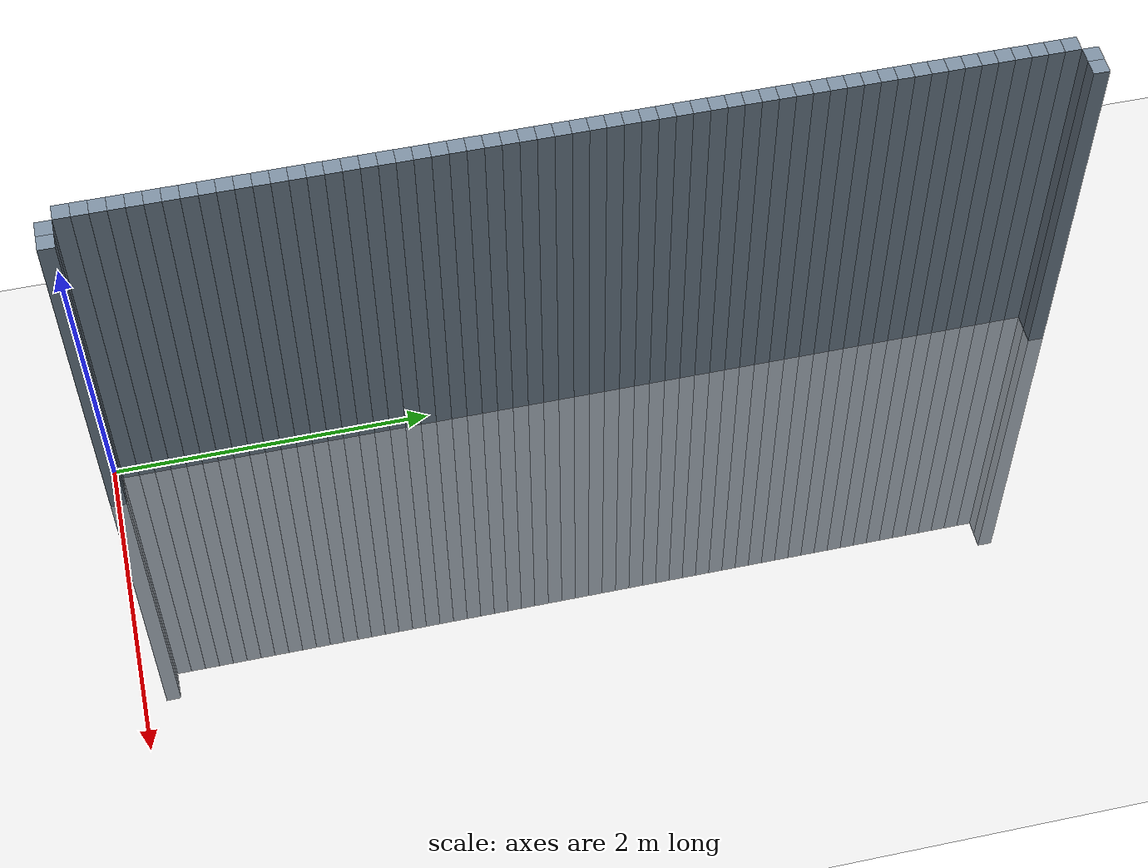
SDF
<sdf version="1.6">
 <world name="default">
  <model name="ground_plane">
   <static>1</static>
   <link name="link">
    <collision name="collision">
     <geometry><plane><normal>0 0 1</normal><size>100 100</size></plane></geometry>
     <surface><friction><ode><mu>100</mu><mu2>50</mu2></ode></friction></surface>
    </collision>
    <visual name="visual">
     <cast_shadows>0</cast_shadows>
     <geometry><plane><normal>0 0 1</normal><size>100 100</size></plane></geometry>
     <material>
      <script><uri>file://media/materials/scripts/gazebo.material</uri><name>Gazebo/Grey</name></script>
     </material>
    </visual>
   </link>
  </model>
  <model name="unit_cylinder_1">
   <static>1</static>
   <pose>0 0.1 0 0 -0 0</pose>
   <link name="link">
    <inertial>
     <mass>1</mass>
     <inertia><ixx>0.145833</ixx><ixy>0</ixy><ixz>0</ixz><iyy>0.145833</iyy><iyz>0</iyz><izz>0.125</izz></inertia>
    </inertial>
    <collision name="collision"><geometry><box><size>0.1 0.1 5</size></box></geometry></collision>
    <visual name="visual">
     <geometry><box><size>0.1 0.1 5</size></box></geometry>
     <material><ambient>0.466667 0.533333 0.6 1</ambient><diffuse>0.466667 0.533333 0.6 1</diffuse></material>
     <material>
      <script><name>Gazebo/Grey</name><uri>file://media/materials/scripts/gazebo.material</uri></script>
     </material>
    </visual>
   </link>
  </model>
  <model name="unit_cylinder_2">
   <static>1</static>
   <pose>0 0.2 0 0 -0 0</pose>
   <link name="link">
    <inertial>
     <mass>1</mass>
     <inertia><ixx>0.145833</ixx><ixy>0</ixy><ixz>0</ixz><iyy>0.145833</iyy><iyz>0</iyz><izz>0.125</izz></inertia>
    </inertial>
    <collision name="collision"><geometry><box><size>0.1 0.1 5</size></box></geometry></collision>
    <visual name="visual">
     <geometry><box><size>0.1 0.1 5</size></box></geometry>
     <material><ambient>0.466667 0.533333 0.6 1</ambient><diffuse>0.466667 0.533333 0.6 1</diffuse></material>
     <material>
      <script><name>Gazebo/Grey</name><uri>file://media/materials/scripts/gazebo.material</uri></script>
     </material>
    </visual>
   </link>
  </model>
  <model name="unit_cylinder_3">
   <static>1</static>
   <pose>0 0.3 0 0 -0 0</pose>
   <link name="link">
    <inertial>
     <mass>1</mass>
     <inertia><ixx>0.145833</ixx><ixy>0</ixy><ixz>0</ixz><iyy>0.145833</iyy><iyz>0</iyz><izz>0.125</izz></inertia>
    </inertial>
    <collision name="collision"><geometry><box><size>0.1 0.1 5</size></box></geometry></collision>
    <visual name="visual">
     <geometry><box><size>0.1 0.1 5</size></box></geometry>
     <material><ambient>0.466667 0.533333 0.6 1</ambient><diffuse>0.466667 0.533333 0.6 1</diffuse></material>
     <material>
      <script><name>Gazebo/Grey</name><uri>file://media/materials/scripts/gazebo.material</uri></script>
     </material>
    </visual>
   </link>
  </model>
  <model name="unit_cylinder_4">
   <static>1</static>
   <pose>0 0.4 0 0 -0 0</pose>
   <link name="link">
    <inertial>
     <mass>1</mass>
     <inertia><ixx>0.145833</ixx><ixy>0</ixy><ixz>0</ixz><iyy>0.145833</iyy><iyz>0</iyz><izz>0.125</izz></inertia>
    </inertial>
    <collision name="collision"><geometry><box><size>0.1 0.1 5</size></box></geometry></collision>
    <visual name="visual">
     <geometry><box><size>0.1 0.1 5</size></box></geometry>
     <material><ambient>0.466667 0.533333 0.6 1</ambient><diffuse>0.466667 0.533333 0.6 1</diffuse></material>
     <material>
      <script><name>Gazebo/Grey</name><uri>file://media/materials/scripts/gazebo.material</uri></script>
     </material>
    </visual>
   </link>
  </model>
  <model name="unit_cylinder_5">
   <static>1</static>
   <pose>0 0.5 0 0 -0 0</pose>
   <link name="link">
    <inertial>
     <mass>1</mass>
     <inertia><ixx>0.145833</ixx><ixy>0</ixy><ixz>0</ixz><iyy>0.145833</iyy><iyz>0</iyz><izz>0.125</izz></inertia>
    </inertial>
    <collision name="collision"><geometry><box><size>0.1 0.1 5</size></box></geometry></collision>
    <visual name="visual">
     <geometry><box><size>0.1 0.1 5</size></box></geometry>
     <material><ambient>0.466667 0.533333 0.6 1</ambient><diffuse>0.466667 0.533333 0.6 1</diffuse></material>
     <material>
      <script><name>Gazebo/Grey</name><uri>file://media/materials/scripts/gazebo.material</uri></script>
     </material>
    </visual>
   </link>
  </model>
  <model name="unit_cylinder_6">
   <static>1</static>
   <pose>0 0.6 0 0 -0 0</pose>
   <link name="link">
    <inertial>
     <mass>1</mass>
     <inertia><ixx>0.145833</ixx><ixy>0</ixy><ixz>0</ixz><iyy>0.145833</iyy><iyz>0</iyz><izz>0.125</izz></inertia>
    </inertial>
    <collision name="collision"><geometry><box><size>0.1 0.1 5</size></box></geometry></collision>
    <visual name="visual">
     <geometry><box><size>0.1 0.1 5</size></box></geometry>
     <material><ambient>0.466667 0.533333 0.6 1</ambient><diffuse>0.466667 0.533333 0.6 1</diffuse></material>
     <material>
      <script><name>Gazebo/Grey</name><uri>file://media/materials/scripts/gazebo.material</uri></script>
     </material>
    </visual>
   </link>
  </model>
  <model name="unit_cylinder_7">
   <static>1</static>
   <pose>0 0.7 0 0 -0 0</pose>
   <link name="link">
    <inertial>
     <mass>1</mass>
     <inertia><ixx>0.145833</ixx><ixy>0</ixy><ixz>0</ixz><iyy>0.145833</iyy><iyz>0</iyz><izz>0.125</izz></inertia>
    </inertial>
    <collision name="collision"><geometry><box><size>0.1 0.1 5</size></box></geometry></collision>
    <visual name="visual">
     <geometry><box><size>0.1 0.1 5</size></box></geometry>
     <material><ambient>0.466667 0.533333 0.6 1</ambient><diffuse>0.466667 0.533333 0.6 1</diffuse></material>
     <material>
      <script><name>Gazebo/Grey</name><uri>file://media/materials/scripts/gazebo.material</uri></script>
     </material>
    </visual>
   </link>
  </model>
  <model name="unit_cylinder_8">
   <static>1</static>
   <pose>0 0.8 0 0 -0 0</pose>
   <link name="link">
    <inertial>
     <mass>1</mass>
     <inertia><ixx>0.145833</ixx><ixy>0</ixy><ixz>0</ixz><iyy>0.145833</iyy><iyz>0</iyz><izz>0.125</izz></inertia>
    </inertial>
    <collision name="collision"><geometry><box><size>0.1 0.1 5</size></box></geometry></collision>
    <visual name="visual">
     <geometry><box><size>0.1 0.1 5</size></box></geometry>
     <material><ambient>0.466667 0.533333 0.6 1</ambient><diffuse>0.466667 0.533333 0.6 1</diffuse></material>
     <material>
      <script><name>Gazebo/Grey</name><uri>file://media/materials/scripts/gazebo.material</uri></script>
     </material>
    </visual>
   </link>
  </model>
  <model name="unit_cylinder_9">
   <static>1</static>
   <pose>0 0.9 0 0 -0 0</pose>
   <link name="link">
    <inertial>
     <mass>1</mass>
     <inertia><ixx>0.145833</ixx><ixy>0</ixy><ixz>0</ixz><iyy>0.145833</iyy><iyz>0</iyz><izz>0.125</izz></inertia>
    </inertial>
    <collision name="collision"><geometry><box><size>0.1 0.1 5</size></box></geometry></collision>
    <visual name="visual">
     <geometry><box><size>0.1 0.1 5</size></box></geometry>
     <material><ambient>0.466667 0.533333 0.6 1</ambient><diffuse>0.466667 0.533333 0.6 1</diffuse></material>
     <material>
      <script><name>Gazebo/Grey</name><uri>file://media/materials/scripts/gazebo.material</uri></script>
     </material>
    </visual>
   </link>
  </model>
  <model name="unit_cylinder_10">
   <static>1</static>
   <pose>0 1 0 0 -0 0</pose>
   <link name="link">
    <inertial>
     <mass>1</mass>
     <inertia><ixx>0.145833</ixx><ixy>0</ixy><ixz>0</ixz><iyy>0.145833</iyy><iyz>0</iyz><izz>0.125</izz></inertia>
    </inertial>
    <collision name="collision"><geometry><box><size>0.1 0.1 5</size></box></geometry></collision>
    <visual name="visual">
     <geometry><box><size>0.1 0.1 5</size></box></geometry>
     <material><ambient>0.466667 0.533333 0.6 1</ambient><diffuse>0.466667 0.533333 0.6 1</diffuse></material>
     <material>
      <script><name>Gazebo/Grey</name><uri>file://media/materials/scripts/gazebo.material</uri></script>
     </material>
    </visual>
   </link>
  </model>
  <model name="unit_cylinder_11">
   <static>1</static>
   <pose>0 1.1 0 0 -0 0</pose>
   <link name="link">
    <inertial>
     <mass>1</mass>
     <inertia><ixx>0.145833</ixx><ixy>0</ixy><ixz>0</ixz><iyy>0.145833</iyy><iyz>0</iyz><izz>0.125</izz></inertia>
    </inertial>
    <collision name="collision"><geometry><box><size>0.1 0.1 5</size></box></geometry></collision>
    <visual name="visual">
     <geometry><box><size>0.1 0.1 5</size></box></geometry>
     <material><ambient>0.466667 0.533333 0.6 1</ambient><diffuse>0.466667 0.533333 0.6 1</diffuse></material>
     <material>
      <script><name>Gazebo/Grey</name><uri>file://media/materials/scripts/gazebo.material</uri></script>
     </material>
    </visual>
   </link>
  </model>
  <model name="unit_cylinder_12">
   <static>1</static>
   <pose>0 1.2 0 0 -0 0</pose>
   <link name="link">
    <inertial>
     <mass>1</mass>
     <inertia><ixx>0.145833</ixx><ixy>0</ixy><ixz>0</ixz><iyy>0.145833</iyy><iyz>0</iyz><izz>0.125</izz></inertia>
    </inertial>
    <collision name="collision"><geometry><box><size>0.1 0.1 5</size></box></geometry></collision>
    <visual name="visual">
     <geometry><box><size>0.1 0.1 5</size></box></geometry>
     <material><ambient>0.466667 0.533333 0.6 1</ambient><diffuse>0.466667 0.533333 0.6 1</diffuse></material>
     <material>
      <script><name>Gazebo/Grey</name><uri>file://media/materials/scripts/gazebo.material</uri></script>
     </material>
    </visual>
   </link>
  </model>
  <model name="unit_cylinder_13">
   <static>1</static>
   <pose>0 1.3 0 0 -0 0</pose>
   <link name="link">
    <inertial>
     <mass>1</mass>
     <inertia><ixx>0.145833</ixx><ixy>0</ixy><ixz>0</ixz><iyy>0.145833</iyy><iyz>0</iyz><izz>0.125</izz></inertia>
    </inertial>
    <collision name="collision"><geometry><box><size>0.1 0.1 5</size></box></geometry></collision>
    <visual name="visual">
     <geometry><box><size>0.1 0.1 5</size></box></geometry>
     <material><ambient>0.466667 0.533333 0.6 1</ambient><diffuse>0.466667 0.533333 0.6 1</diffuse></material>
     <material>
      <script><name>Gazebo/Grey</name><uri>file://media/materials/scripts/gazebo.material</uri></script>
     </material>
    </visual>
   </link>
  </model>
  <model name="unit_cylinder_14">
   <static>1</static>
   <pose>0 1.4 0 0 -0 0</pose>
   <link name="link">
    <inertial>
     <mass>1</mass>
     <inertia><ixx>0.145833</ixx><ixy>0</ixy><ixz>0</ixz><iyy>0.145833</iyy><iyz>0</iyz><izz>0.125</izz></inertia>
    </inertial>
    <collision name="collision"><geometry><box><size>0.1 0.1 5</size></box></geometry></collision>
    <visual name="visual">
     <geometry><box><size>0.1 0.1 5</size></box></geometry>
     <material><ambient>0.466667 0.533333 0.6 1</ambient><diffuse>0.466667 0.533333 0.6 1</diffuse></material>
     <material>
      <script><name>Gazebo/Grey</name><uri>file://media/materials/scripts/gazebo.material</uri></script>
     </material>
    </visual>
   </link>
  </model>
  <model name="unit_cylinder_15">
   <static>1</static>
   <pose>0 1.5 0 0 -0 0</pose>
   <link name="link">
    <inertial>
     <mass>1</mass>
     <inertia><ixx>0.145833</ixx><ixy>0</ixy><ixz>0</ixz><iyy>0.145833</iyy><iyz>0</iyz><izz>0.125</izz></inertia>
    </inertial>
    <collision name="collision"><geometry><box><size>0.1 0.1 5</size></box></geometry></collision>
    <visual name="visual">
     <geometry><box><size>0.1 0.1 5</size></box></geometry>
     <material><ambient>0.466667 0.533333 0.6 1</ambient><diffuse>0.466667 0.533333 0.6 1</diffuse></material>
     <material>
      <script><name>Gazebo/Grey</name><uri>file://media/materials/scripts/gazebo.material</uri></script>
     </material>
    </visual>
   </link>
  </model>
  <model name="unit_cylinder_16">
   <static>1</static>
   <pose>0 1.6 0 0 -0 0</pose>
   <link name="link">
    <inertial>
     <mass>1</mass>
     <inertia><ixx>0.145833</ixx><ixy>0</ixy><ixz>0</ixz><iyy>0.145833</iyy><iyz>0</iyz><izz>0.125</izz></inertia>
    </inertial>
    <collision name="collision"><geometry><box><size>0.1 0.1 5</size></box></geometry></collision>
    <visual name="visual">
     <geometry><box><size>0.1 0.1 5</size></box></geometry>
     <material><ambient>0.466667 0.533333 0.6 1</ambient><diffuse>0.466667 0.533333 0.6 1</diffuse></material>
     <material>
      <script><name>Gazebo/Grey</name><uri>file://media/materials/scripts/gazebo.material</uri></script>
     </material>
    </visual>
   </link>
  </model>
  <model name="unit_cylinder_17">
   <static>1</static>
   <pose>0 1.7 0 0 -0 0</pose>
   <link name="link">
    <inertial>
     <mass>1</mass>
     <inertia><ixx>0.145833</ixx><ixy>0</ixy><ixz>0</ixz><iyy>0.145833</iyy><iyz>0</iyz><izz>0.125</izz></inertia>
    </inertial>
    <collision name="collision"><geometry><box><size>0.1 0.1 5</size></box></geometry></collision>
    <visual name="visual">
     <geometry><box><size>0.1 0.1 5</size></box></geometry>
     <material><ambient>0.466667 0.533333 0.6 1</ambient><diffuse>0.466667 0.533333 0.6 1</diffuse></material>
     <material>
      <script><name>Gazebo/Grey</name><uri>file://media/materials/scripts/gazebo.material</uri></script>
     </material>
    </visual>
   </link>
  </model>
  <model name="unit_cylinder_18">
   <static>1</static>
   <pose>0 1.8 0 0 -0 0</pose>
   <link name="link">
    <inertial>
     <mass>1</mass>
     <inertia><ixx>0.145833</ixx><ixy>0</ixy><ixz>0</ixz><iyy>0.145833</iyy><iyz>0</iyz><izz>0.125</izz></inertia>
    </inertial>
    <collision name="collision"><geometry><box><size>0.1 0.1 5</size></box></geometry></collision>
    <visual name="visual">
     <geometry><box><size>0.1 0.1 5</size></box></geometry>
     <material><ambient>0.466667 0.533333 0.6 1</ambient><diffuse>0.466667 0.533333 0.6 1</diffuse></material>
     <material>
      <script><name>Gazebo/Grey</name><uri>file://media/materials/scripts/gazebo.material</uri></script>
     </material>
    </visual>
   </link>
  </model>
  <model name="unit_cylinder_19">
   <static>1</static>
   <pose>0 1.9 0 0 -0 0</pose>
   <link name="link">
    <inertial>
     <mass>1</mass>
     <inertia><ixx>0.145833</ixx><ixy>0</ixy><ixz>0</ixz><iyy>0.145833</iyy><iyz>0</iyz><izz>0.125</izz></inertia>
    </inertial>
    <collision name="collision"><geometry><box><size>0.1 0.1 5</size></box></geometry></collision>
    <visual name="visual">
     <geometry><box><size>0.1 0.1 5</size></box></geometry>
     <material><ambient>0.466667 0.533333 0.6 1</ambient><diffuse>0.466667 0.533333 0.6 1</diffuse></material>
     <material>
      <script><name>Gazebo/Grey</name><uri>file://media/materials/scripts/gazebo.material</uri></script>
     </material>
    </visual>
   </link>
  </model>
  <model name="unit_cylinder_20">
   <static>1</static>
   <pose>0 2 0 0 -0 0</pose>
   <link name="link">
    <inertial>
     <mass>1</mass>
     <inertia><ixx>0.145833</ixx><ixy>0</ixy><ixz>0</ixz><iyy>0.145833</iyy><iyz>0</iyz><izz>0.125</izz></inertia>
    </inertial>
    <collision name="collision"><geometry><box><size>0.1 0.1 5</size></box></geometry></collision>
    <visual name="visual">
     <geometry><box><size>0.1 0.1 5</size></box></geometry>
     <material><ambient>0.466667 0.533333 0.6 1</ambient><diffuse>0.466667 0.533333 0.6 1</diffuse></material>
     <material>
      <script><name>Gazebo/Grey</name><uri>file://media/materials/scripts/gazebo.material</uri></script>
     </material>
    </visual>
   </link>
  </model>
  <model name="unit_cylinder_21">
   <static>1</static>
   <pose>0 2.1 0 0 -0 0</pose>
   <link name="link">
    <inertial>
     <mass>1</mass>
     <inertia><ixx>0.145833</ixx><ixy>0</ixy><ixz>0</ixz><iyy>0.145833</iyy><iyz>0</iyz><izz>0.125</izz></inertia>
    </inertial>
    <collision name="collision"><geometry><box><size>0.1 0.1 5</size></box></geometry></collision>
    <visual name="visual">
     <geometry><box><size>0.1 0.1 5</size></box></geometry>
     <material><ambient>0.466667 0.533333 0.6 1</ambient><diffuse>0.466667 0.533333 0.6 1</diffuse></material>
     <material>
      <script><name>Gazebo/Grey</name><uri>file://media/materials/scripts/gazebo.material</uri></script>
     </material>
    </visual>
   </link>
  </model>
  <model name="unit_cylinder_22">
   <static>1</static>
   <pose>0 2.2 0 0 -0 0</pose>
   <link name="link">
    <inertial>
     <mass>1</mass>
     <inertia><ixx>0.145833</ixx><ixy>0</ixy><ixz>0</ixz><iyy>0.145833</iyy><iyz>0</iyz><izz>0.125</izz></inertia>
    </inertial>
    <collision name="collision"><geometry><box><size>0.1 0.1 5</size></box></geometry></collision>
    <visual name="visual">
     <geometry><box><size>0.1 0.1 5</size></box></geometry>
     <material><ambient>0.466667 0.533333 0.6 1</ambient><diffuse>0.466667 0.533333 0.6 1</diffuse></material>
     <material>
      <script><name>Gazebo/Grey</name><uri>file://media/materials/scripts/gazebo.material</uri></script>
     </material>
    </visual>
   </link>
  </model>
  <model name="unit_cylinder_23">
   <static>1</static>
   <pose>0 2.3 0 0 -0 0</pose>
   <link name="link">
    <inertial>
     <mass>1</mass>
     <inertia><ixx>0.145833</ixx><ixy>0</ixy><ixz>0</ixz><iyy>0.145833</iyy><iyz>0</iyz><izz>0.125</izz></inertia>
    </inertial>
    <collision name="collision"><geometry><box><size>0.1 0.1 5</size></box></geometry></collision>
    <visual name="visual">
     <geometry><box><size>0.1 0.1 5</size></box></geometry>
     <material><ambient>0.466667 0.533333 0.6 1</ambient><diffuse>0.466667 0.533333 0.6 1</diffuse></material>
     <material>
      <script><name>Gazebo/Grey</name><uri>file://media/materials/scripts/gazebo.material</uri></script>
     </material>
    </visual>
   </link>
  </model>
  <model name="unit_cylinder_24">
   <static>1</static>
   <pose>0 2.4 0 0 -0 0</pose>
   <link name="link">
    <inertial>
     <mass>1</mass>
     <inertia><ixx>0.145833</ixx><ixy>0</ixy><ixz>0</ixz><iyy>0.145833</iyy><iyz>0</iyz><izz>0.125</izz></inertia>
    </inertial>
    <collision name="collision"><geometry><box><size>0.1 0.1 5</size></box></geometry></collision>
    <visual name="visual">
     <geometry><box><size>0.1 0.1 5</size></box></geometry>
     <material><ambient>0.466667 0.533333 0.6 1</ambient><diffuse>0.466667 0.533333 0.6 1</diffuse></material>
     <material>
      <script><name>Gazebo/Grey</name><uri>file://media/materials/scripts/gazebo.material</uri></script>
     </material>
    </visual>
   </link>
  </model>
  <model name="unit_cylinder_25">
   <static>1</static>
   <pose>0 2.5 0 0 -0 0</pose>
   <link name="link">
    <inertial>
     <mass>1</mass>
     <inertia><ixx>0.145833</ixx><ixy>0</ixy><ixz>0</ixz><iyy>0.145833</iyy><iyz>0</iyz><izz>0.125</izz></inertia>
    </inertial>
    <collision name="collision"><geometry><box><size>0.1 0.1 5</size></box></geometry></collision>
    <visual name="visual">
     <geometry><box><size>0.1 0.1 5</size></box></geometry>
     <material><ambient>0.466667 0.533333 0.6 1</ambient><diffuse>0.466667 0.533333 0.6 1</diffuse></material>
     <material>
      <script><name>Gazebo/Grey</name><uri>file://media/materials/scripts/gazebo.material</uri></script>
     </material>
    </visual>
   </link>
  </model>
  <model name="unit_cylinder_26">
   <static>1</static>
   <pose>0 2.6 0 0 -0 0</pose>
   <link name="link">
    <inertial>
     <mass>1</mass>
     <inertia><ixx>0.145833</ixx><ixy>0</ixy><ixz>0</ixz><iyy>0.145833</iyy><iyz>0</iyz><izz>0.125</izz></inertia>
    </inertial>
    <collision name="collision"><geometry><box><size>0.1 0.1 5</size></box></geometry></collision>
    <visual name="visual">
     <geometry><box><size>0.1 0.1 5</size></box></geometry>
     <material><ambient>0.466667 0.533333 0.6 1</ambient><diffuse>0.466667 0.533333 0.6 1</diffuse></material>
     <material>
      <script><name>Gazebo/Grey</name><uri>file://media/materials/scripts/gazebo.material</uri></script>
     </material>
    </visual>
   </link>
  </model>
  <model name="unit_cylinder_27">
   <static>1</static>
   <pose>0 2.7 0 0 -0 0</pose>
   <link name="link">
    <inertial>
     <mass>1</mass>
     <inertia><ixx>0.145833</ixx><ixy>0</ixy><ixz>0</ixz><iyy>0.145833</iyy><iyz>0</iyz><izz>0.125</izz></inertia>
    </inertial>
    <collision name="collision"><geometry><box><size>0.1 0.1 5</size></box></geometry></collision>
    <visual name="visual">
     <geometry><box><size>0.1 0.1 5</size></box></geometry>
     <material><ambient>0.466667 0.533333 0.6 1</ambient><diffuse>0.466667 0.533333 0.6 1</diffuse></material>
     <material>
      <script><name>Gazebo/Grey</name><uri>file://media/materials/scripts/gazebo.material</uri></script>
     </material>
    </visual>
   </link>
  </model>
  <model name="unit_cylinder_28">
   <static>1</static>
   <pose>0 2.8 0 0 -0 0</pose>
   <link name="link">
    <inertial>
     <mass>1</mass>
     <inertia><ixx>0.145833</ixx><ixy>0</ixy><ixz>0</ixz><iyy>0.145833</iyy><iyz>0</iyz><izz>0.125</izz></inertia>
    </inertial>
    <collision name="collision"><geometry><box><size>0.1 0.1 5</size></box></geometry></collision>
    <visual name="visual">
     <geometry><box><size>0.1 0.1 5</size></box></geometry>
     <material><ambient>0.466667 0.533333 0.6 1</ambient><diffuse>0.466667 0.533333 0.6 1</diffuse></material>
     <material>
      <script><name>Gazebo/Grey</name><uri>file://media/materials/scripts/gazebo.material</uri></script>
     </material>
    </visual>
   </link>
  </model>
  <model name="unit_cylinder_29">
   <static>1</static>
   <pose>0 2.9 0 0 -0 0</pose>
   <link name="link">
    <inertial>
     <mass>1</mass>
     <inertia><ixx>0.145833</ixx><ixy>0</ixy><ixz>0</ixz><iyy>0.145833</iyy><iyz>0</iyz><izz>0.125</izz></inertia>
    </inertial>
    <collision name="collision"><geometry><box><size>0.1 0.1 5</size></box></geometry></collision>
    <visual name="visual">
     <geometry><box><size>0.1 0.1 5</size></box></geometry>
     <material><ambient>0.466667 0.533333 0.6 1</ambient><diffuse>0.466667 0.533333 0.6 1</diffuse></material>
     <material>
      <script><name>Gazebo/Grey</name><uri>file://media/materials/scripts/gazebo.material</uri></script>
     </material>
    </visual>
   </link>
  </model>
  <model name="unit_cylinder_30">
   <static>1</static>
   <pose>0 3 0 0 -0 0</pose>
   <link name="link">
    <inertial>
     <mass>1</mass>
     <inertia><ixx>0.145833</ixx><ixy>0</ixy><ixz>0</ixz><iyy>0.145833</iyy><iyz>0</iyz><izz>0.125</izz></inertia>
    </inertial>
    <collision name="collision"><geometry><box><size>0.1 0.1 5</size></box></geometry></collision>
    <visual name="visual">
     <geometry><box><size>0.1 0.1 5</size></box></geometry>
     <material><ambient>0.466667 0.533333 0.6 1</ambient><diffuse>0.466667 0.533333 0.6 1</diffuse></material>
     <material>
      <script><name>Gazebo/Grey</name><uri>file://media/materials/scripts/gazebo.material</uri></script>
     </material>
    </visual>
   </link>
  </model>
  <model name="unit_cylinder_31">
   <static>1</static>
   <pose>0 3.1 0 0 -0 0</pose>
   <link name="link">
    <inertial>
     <mass>1</mass>
     <inertia><ixx>0.145833</ixx><ixy>0</ixy><ixz>0</ixz><iyy>0.145833</iyy><iyz>0</iyz><izz>0.125</izz></inertia>
    </inertial>
    <collision name="collision"><geometry><box><size>0.1 0.1 5</size></box></geometry></collision>
    <visual name="visual">
     <geometry><box><size>0.1 0.1 5</size></box></geometry>
     <material><ambient>0.466667 0.533333 0.6 1</ambient><diffuse>0.466667 0.533333 0.6 1</diffuse></material>
     <material>
      <script><name>Gazebo/Grey</name><uri>file://media/materials/scripts/gazebo.material</uri></script>
     </material>
    </visual>
   </link>
  </model>
  <model name="unit_cylinder_32">
   <static>1</static>
   <pose>0 3.2 0 0 -0 0</pose>
   <link name="link">
    <inertial>
     <mass>1</mass>
     <inertia><ixx>0.145833</ixx><ixy>0</ixy><ixz>0</ixz><iyy>0.145833</iyy><iyz>0</iyz><izz>0.125</izz></inertia>
    </inertial>
    <collision name="collision"><geometry><box><size>0.1 0.1 5</size></box></geometry></collision>
    <visual name="visual">
     <geometry><box><size>0.1 0.1 5</size></box></geometry>
     <material><ambient>0.466667 0.533333 0.6 1</ambient><diffuse>0.466667 0.533333 0.6 1</diffuse></material>
     <material>
      <script><name>Gazebo/Grey</name><uri>file://media/materials/scripts/gazebo.material</uri></script>
     </material>
    </visual>
   </link>
  </model>
  <model name="unit_cylinder_33">
   <static>1</static>
   <pose>0 3.3 0 0 -0 0</pose>
   <link name="link">
    <inertial>
     <mass>1</mass>
     <inertia><ixx>0.145833</ixx><ixy>0</ixy><ixz>0</ixz><iyy>0.145833</iyy><iyz>0</iyz><izz>0.125</izz></inertia>
    </inertial>
    <collision name="collision"><geometry><box><size>0.1 0.1 5</size></box></geometry></collision>
    <visual name="visual">
     <geometry><box><size>0.1 0.1 5</size></box></geometry>
     <material><ambient>0.466667 0.533333 0.6 1</ambient><diffuse>0.466667 0.533333 0.6 1</diffuse></material>
     <material>
      <script><name>Gazebo/Grey</name><uri>file://media/materials/scripts/gazebo.material</uri></script>
     </material>
    </visual>
   </link>
  </model>
  <model name="unit_cylinder_34">
   <static>1</static>
   <pose>0 3.4 0 0 -0 0</pose>
   <link name="link">
    <inertial>
     <mass>1</mass>
     <inertia><ixx>0.145833</ixx><ixy>0</ixy><ixz>0</ixz><iyy>0.145833</iyy><iyz>0</iyz><izz>0.125</izz></inertia>
    </inertial>
    <collision name="collision"><geometry><box><size>0.1 0.1 5</size></box></geometry></collision>
    <visual name="visual">
     <geometry><box><size>0.1 0.1 5</size></box></geometry>
     <material><ambient>0.466667 0.533333 0.6 1</ambient><diffuse>0.466667 0.533333 0.6 1</diffuse></material>
     <material>
      <script><name>Gazebo/Grey</name><uri>file://media/materials/scripts/gazebo.material</uri></script>
     </material>
    </visual>
   </link>
  </model>
  <model name="unit_cylinder_35">
   <static>1</static>
   <pose>0 3.5 0 0 -0 0</pose>
   <link name="link">
    <inertial>
     <mass>1</mass>
     <inertia><ixx>0.145833</ixx><ixy>0</ixy><ixz>0</ixz><iyy>0.145833</iyy><iyz>0</iyz><izz>0.125</izz></inertia>
    </inertial>
    <collision name="collision"><geometry><box><size>0.1 0.1 5</size></box></geometry></collision>
    <visual name="visual">
     <geometry><box><size>0.1 0.1 5</size></box></geometry>
     <material><ambient>0.466667 0.533333 0.6 1</ambient><diffuse>0.466667 0.533333 0.6 1</diffuse></material>
     <material>
      <script><name>Gazebo/Grey</name><uri>file://media/materials/scripts/gazebo.material</uri></script>
     </material>
    </visual>
   </link>
  </model>
  <model name="unit_cylinder_36">
   <static>1</static>
   <pose>0 3.6 0 0 -0 0</pose>
   <link name="link">
    <inertial>
     <mass>1</mass>
     <inertia><ixx>0.145833</ixx><ixy>0</ixy><ixz>0</ixz><iyy>0.145833</iyy><iyz>0</iyz><izz>0.125</izz></inertia>
    </inertial>
    <collision name="collision"><geometry><box><size>0.1 0.1 5</size></box></geometry></collision>
    <visual name="visual">
     <geometry><box><size>0.1 0.1 5</size></box></geometry>
     <material><ambient>0.466667 0.533333 0.6 1</ambient><diffuse>0.466667 0.533333 0.6 1</diffuse></material>
     <material>
      <script><name>Gazebo/Grey</name><uri>file://media/materials/scripts/gazebo.material</uri></script>
     </material>
    </visual>
   </link>
  </model>
  <model name="unit_cylinder_37">
   <static>1</static>
   <pose>0 3.7 0 0 -0 0</pose>
   <link name="link">
    <inertial>
     <mass>1</mass>
     <inertia><ixx>0.145833</ixx><ixy>0</ixy><ixz>0</ixz><iyy>0.145833</iyy><iyz>0</iyz><izz>0.125</izz></inertia>
    </inertial>
    <collision name="collision"><geometry><box><size>0.1 0.1 5</size></box></geometry></collision>
    <visual name="visual">
     <geometry><box><size>0.1 0.1 5</size></box></geometry>
     <material><ambient>0.466667 0.533333 0.6 1</ambient><diffuse>0.466667 0.533333 0.6 1</diffuse></material>
     <material>
      <script><name>Gazebo/Grey</name><uri>file://media/materials/scripts/gazebo.material</uri></script>
     </material>
    </visual>
   </link>
  </model>
  <model name="unit_cylinder_38">
   <static>1</static>
   <pose>0 3.8 0 0 -0 0</pose>
   <link name="link">
    <inertial>
     <mass>1</mass>
     <inertia><ixx>0.145833</ixx><ixy>0</ixy><ixz>0</ixz><iyy>0.145833</iyy><iyz>0</iyz><izz>0.125</izz></inertia>
    </inertial>
    <collision name="collision"><geometry><box><size>0.1 0.1 5</size></box></geometry></collision>
    <visual name="visual">
     <geometry><box><size>0.1 0.1 5</size></box></geometry>
     <material><ambient>0.466667 0.533333 0.6 1</ambient><diffuse>0.466667 0.533333 0.6 1</diffuse></material>
     <material>
      <script><name>Gazebo/Grey</name><uri>file://media/materials/scripts/gazebo.material</uri></script>
     </material>
    </visual>
   </link>
  </model>
  <model name="unit_cylinder_39">
   <static>1</static>
   <pose>0 3.9 0 0 -0 0</pose>
   <link name="link">
    <inertial>
     <mass>1</mass>
     <inertia><ixx>0.145833</ixx><ixy>0</ixy><ixz>0</ixz><iyy>0.145833</iyy><iyz>0</iyz><izz>0.125</izz></inertia>
    </inertial>
    <collision name="collision"><geometry><box><size>0.1 0.1 5</size></box></geometry></collision>
    <visual name="visual">
     <geometry><box><size>0.1 0.1 5</size></box></geometry>
     <material><ambient>0.466667 0.533333 0.6 1</ambient><diffuse>0.466667 0.533333 0.6 1</diffuse></material>
     <material>
      <script><name>Gazebo/Grey</name><uri>file://media/materials/scripts/gazebo.material</uri></script>
     </material>
    </visual>
   </link>
  </model>
  <model name="unit_cylinder_40">
   <static>1</static>
   <pose>0 4 0 0 -0 0</pose>
   <link name="link">
    <inertial>
     <mass>1</mass>
     <inertia><ixx>0.145833</ixx><ixy>0</ixy><ixz>0</ixz><iyy>0.145833</iyy><iyz>0</iyz><izz>0.125</izz></inertia>
    </inertial>
    <collision name="collision"><geometry><box><size>0.1 0.1 5</size></box></geometry></collision>
    <visual name="visual">
     <geometry><box><size>0.1 0.1 5</size></box></geometry>
     <material><ambient>0.466667 0.533333 0.6 1</ambient><diffuse>0.466667 0.533333 0.6 1</diffuse></material>
     <material>
      <script><name>Gazebo/Grey</name><uri>file://media/materials/scripts/gazebo.material</uri></script>
     </material>
    </visual>
   </link>
  </model>
  <model name="unit_cylinder_41">
   <static>1</static>
   <pose>0 4.1 0 0 -0 0</pose>
   <link name="link">
    <inertial>
     <mass>1</mass>
     <inertia><ixx>0.145833</ixx><ixy>0</ixy><ixz>0</ixz><iyy>0.145833</iyy><iyz>0</iyz><izz>0.125</izz></inertia>
    </inertial>
    <collision name="collision"><geometry><box><size>0.1 0.1 5</size></box></geometry></collision>
    <visual name="visual">
     <geometry><box><size>0.1 0.1 5</size></box></geometry>
     <material><ambient>0.466667 0.533333 0.6 1</ambient><diffuse>0.466667 0.533333 0.6 1</diffuse></material>
     <material>
      <script><name>Gazebo/Grey</name><uri>file://media/materials/scripts/gazebo.material</uri></script>
     </material>
    </visual>
   </link>
  </model>
  <model name="unit_cylinder_42">
   <static>1</static>
   <pose>0 4.2 0 0 -0 0</pose>
   <link name="link">
    <inertial>
     <mass>1</mass>
     <inertia><ixx>0.145833</ixx><ixy>0</ixy><ixz>0</ixz><iyy>0.145833</iyy><iyz>0</iyz><izz>0.125</izz></inertia>
    </inertial>
    <collision name="collision"><geometry><box><size>0.1 0.1 5</size></box></geometry></collision>
    <visual name="visual">
     <geometry><box><size>0.1 0.1 5</size></box></geometry>
     <material><ambient>0.466667 0.533333 0.6 1</ambient><diffuse>0.466667 0.533333 0.6 1</diffuse></material>
     <material>
      <script><name>Gazebo/Grey</name><uri>file://media/materials/scripts/gazebo.material</uri></script>
     </material>
    </visual>
   </link>
  </model>
  <model name="unit_cylinder_43">
   <static>1</static>
   <pose>0 4.3 0 0 -0 0</pose>
   <link name="link">
    <inertial>
     <mass>1</mass>
     <inertia><ixx>0.145833</ixx><ixy>0</ixy><ixz>0</ixz><iyy>0.145833</iyy><iyz>0</iyz><izz>0.125</izz></inertia>
    </inertial>
    <collision name="collision"><geometry><box><size>0.1 0.1 5</size></box></geometry></collision>
    <visual name="visual">
     <geometry><box><size>0.1 0.1 5</size></box></geometry>
     <material><ambient>0.466667 0.533333 0.6 1</ambient><diffuse>0.466667 0.533333 0.6 1</diffuse></material>
     <material>
      <script><name>Gazebo/Grey</name><uri>file://media/materials/scripts/gazebo.material</uri></script>
     </material>
    </visual>
   </link>
  </model>
  <model name="unit_cylinder_44">
   <static>1</static>
   <pose>0 4.4 0 0 -0 0</pose>
   <link name="link">
    <inertial>
     <mass>1</mass>
     <inertia><ixx>0.145833</ixx><ixy>0</ixy><ixz>0</ixz><iyy>0.145833</iyy><iyz>0</iyz><izz>0.125</izz></inertia>
    </inertial>
    <collision name="collision"><geometry><box><size>0.1 0.1 5</size></box></geometry></collision>
    <visual name="visual">
     <geometry><box><size>0.1 0.1 5</size></box></geometry>
     <material><ambient>0.466667 0.533333 0.6 1</ambient><diffuse>0.466667 0.533333 0.6 1</diffuse></material>
     <material>
      <script><name>Gazebo/Grey</name><uri>file://media/materials/scripts/gazebo.material</uri></script>
     </material>
    </visual>
   </link>
  </model>
  <model name="unit_cylinder_45">
   <static>1</static>
   <pose>0 4.5 0 0 -0 0</pose>
   <link name="link">
    <inertial>
     <mass>1</mass>
     <inertia><ixx>0.145833</ixx><ixy>0</ixy><ixz>0</ixz><iyy>0.145833</iyy><iyz>0</iyz><izz>0.125</izz></inertia>
    </inertial>
    <collision name="collision"><geometry><box><size>0.1 0.1 5</size></box></geometry></collision>
    <visual name="visual">
     <geometry><box><size>0.1 0.1 5</size></box></geometry>
     <material><ambient>0.466667 0.533333 0.6 1</ambient><diffuse>0.466667 0.533333 0.6 1</diffuse></material>
     <material>
      <script><name>Gazebo/Grey</name><uri>file://media/materials/scripts/gazebo.material</uri></script>
     </material>
    </visual>
   </link>
  </model>
  <model name="unit_cylinder_46">
   <static>1</static>
   <pose>0 4.6 0 0 -0 0</pose>
   <link name="link">
    <inertial>
     <mass>1</mass>
     <inertia><ixx>0.145833</ixx><ixy>0</ixy><ixz>0</ixz><iyy>0.145833</iyy><iyz>0</iyz><izz>0.125</izz></inertia>
    </inertial>
    <collision name="collision"><geometry><box><size>0.1 0.1 5</size></box></geometry></collision>
    <visual name="visual">
     <geometry><box><size>0.1 0.1 5</size></box></geometry>
     <material><ambient>0.466667 0.533333 0.6 1</ambient><diffuse>0.466667 0.533333 0.6 1</diffuse></material>
     <material>
      <script><name>Gazebo/Grey</name><uri>file://media/materials/scripts/gazebo.material</uri></script>
     </material>
    </visual>
   </link>
  </model>
  <model name="unit_cylinder_47">
   <static>1</static>
   <pose>0 4.7 0 0 -0 0</pose>
   <link name="link">
    <inertial>
     <mass>1</mass>
     <inertia><ixx>0.145833</ixx><ixy>0</ixy><ixz>0</ixz><iyy>0.145833</iyy><iyz>0</iyz><izz>0.125</izz></inertia>
    </inertial>
    <collision name="collision"><geometry><box><size>0.1 0.1 5</size></box></geometry></collision>
    <visual name="visual">
     <geometry><box><size>0.1 0.1 5</size></box></geometry>
     <material><ambient>0.466667 0.533333 0.6 1</ambient><diffuse>0.466667 0.533333 0.6 1</diffuse></material>
     <material>
      <script><name>Gazebo/Grey</name><uri>file://media/materials/scripts/gazebo.material</uri></script>
     </material>
    </visual>
   </link>
  </model>
  <model name="unit_cylinder_48">
   <static>1</static>
   <pose>0 4.8 0 0 -0 0</pose>
   <link name="link">
    <inertial>
     <mass>1</mass>
     <inertia><ixx>0.145833</ixx><ixy>0</ixy><ixz>0</ixz><iyy>0.145833</iyy><iyz>0</iyz><izz>0.125</izz></inertia>
    </inertial>
    <collision name="collision"><geometry><box><size>0.1 0.1 5</size></box></geometry></collision>
    <visual name="visual">
     <geometry><box><size>0.1 0.1 5</size></box></geometry>
     <material><ambient>0.466667 0.533333 0.6 1</ambient><diffuse>0.466667 0.533333 0.6 1</diffuse></material>
     <material>
      <script><name>Gazebo/Grey</name><uri>file://media/materials/scripts/gazebo.material</uri></script>
     </material>
    </visual>
   </link>
  </model>
  <model name="unit_cylinder_49">
   <static>1</static>
   <pose>0 4.9 0 0 -0 0</pose>
   <link name="link">
    <inertial>
     <mass>1</mass>
     <inertia><ixx>0.145833</ixx><ixy>0</ixy><ixz>0</ixz><iyy>0.145833</iyy><iyz>0</iyz><izz>0.125</izz></inertia>
    </inertial>
    <collision name="collision"><geometry><box><size>0.1 0.1 5</size></box></geometry></collision>
    <visual name="visual">
     <geometry><box><size>0.1 0.1 5</size></box></geometry>
     <material><ambient>0.466667 0.533333 0.6 1</ambient><diffuse>0.466667 0.533333 0.6 1</diffuse></material>
     <material>
      <script><name>Gazebo/Grey</name><uri>file://media/materials/scripts/gazebo.material</uri></script>
     </material>
    </visual>
   </link>
  </model>
  <model name="unit_cylinder_50">
   <static>1</static>
   <pose>0 5 0 0 -0 0</pose>
   <link name="link">
    <inertial>
     <mass>1</mass>
     <inertia><ixx>0.145833</ixx><ixy>0</ixy><ixz>0</ixz><iyy>0.145833</iyy><iyz>0</iyz><izz>0.125</izz></inertia>
    </inertial>
    <collision name="collision"><geometry><box><size>0.1 0.1 5</size></box></geometry></collision>
    <visual name="visual">
     <geometry><box><size>0.1 0.1 5</size></box></geometry>
     <material><ambient>0.466667 0.533333 0.6 1</ambient><diffuse>0.466667 0.533333 0.6 1</diffuse></material>
     <material>
      <script><name>Gazebo/Grey</name><uri>file://media/materials/scripts/gazebo.material</uri></script>
     </material>
    </visual>
   </link>
  </model>
  <model name="unit_cylinder_51">
   <static>1</static>
   <pose>0 5.1 0 0 -0 0</pose>
   <link name="link">
    <inertial>
     <mass>1</mass>
     <inertia><ixx>0.145833</ixx><ixy>0</ixy><ixz>0</ixz><iyy>0.145833</iyy><iyz>0</iyz><izz>0.125</izz></inertia>
    </inertial>
    <collision name="collision"><geometry><box><size>0.1 0.1 5</size></box></geometry></collision>
    <visual name="visual">
     <geometry><box><size>0.1 0.1 5</size></box></geometry>
     <material><ambient>0.466667 0.533333 0.6 1</ambient><diffuse>0.466667 0.533333 0.6 1</diffuse></material>
     <material>
      <script><name>Gazebo/Grey</name><uri>file://media/materials/scripts/gazebo.material</uri></script>
     </material>
    </visual>
   </link>
  </model>
  <model name="unit_cylinder_52">
   <static>1</static>
   <pose>0 5.2 0 0 -0 0</pose>
   <link name="link">
    <inertial>
     <mass>1</mass>
     <inertia><ixx>0.145833</ixx><ixy>0</ixy><ixz>0</ixz><iyy>0.145833</iyy><iyz>0</iyz><izz>0.125</izz></inertia>
    </inertial>
    <collision name="collision"><geometry><box><size>0.1 0.1 5</size></box></geometry></collision>
    <visual name="visual">
     <geometry><box><size>0.1 0.1 5</size></box></geometry>
     <material><ambient>0.466667 0.533333 0.6 1</ambient><diffuse>0.466667 0.533333 0.6 1</diffuse></material>
     <material>
      <script><name>Gazebo/Grey</name><uri>file://media/materials/scripts/gazebo.material</uri></script>
     </material>
    </visual>
   </link>
  </model>
  <model name="unit_cylinder_53">
   <static>1</static>
   <pose>0 5.3 0 0 -0 0</pose>
   <link name="link">
    <inertial>
     <mass>1</mass>
     <inertia><ixx>0.145833</ixx><ixy>0</ixy><ixz>0</ixz><iyy>0.145833</iyy><iyz>0</iyz><izz>0.125</izz></inertia>
    </inertial>
    <collision name="collision"><geometry><box><size>0.1 0.1 5</size></box></geometry></collision>
    <visual name="visual">
     <geometry><box><size>0.1 0.1 5</size></box></geometry>
     <material><ambient>0.466667 0.533333 0.6 1</ambient><diffuse>0.466667 0.533333 0.6 1</diffuse></material>
     <material>
      <script><name>Gazebo/Grey</name><uri>file://media/materials/scripts/gazebo.material</uri></script>
     </material>
    </visual>
   </link>
  </model>
  <model name="unit_cylinder_54">
   <static>1</static>
   <pose>0 5.4 0 0 -0 0</pose>
   <link name="link">
    <inertial>
     <mass>1</mass>
     <inertia><ixx>0.145833</ixx><ixy>0</ixy><ixz>0</ixz><iyy>0.145833</iyy><iyz>0</iyz><izz>0.125</izz></inertia>
    </inertial>
    <collision name="collision"><geometry><box><size>0.1 0.1 5</size></box></geometry></collision>
    <visual name="visual">
     <geometry><box><size>0.1 0.1 5</size></box></geometry>
     <material><ambient>0.466667 0.533333 0.6 1</ambient><diffuse>0.466667 0.533333 0.6 1</diffuse></material>
     <material>
      <script><name>Gazebo/Grey</name><uri>file://media/materials/scripts/gazebo.material</uri></script>
     </material>
    </visual>
   </link>
  </model>
  <model name="unit_cylinder_55">
   <static>1</static>
   <pose>0 5.5 0 0 -0 0</pose>
   <link name="link">
    <inertial>
     <mass>1</mass>
     <inertia><ixx>0.145833</ixx><ixy>0</ixy><ixz>0</ixz><iyy>0.145833</iyy><iyz>0</iyz><izz>0.125</izz></inertia>
    </inertial>
    <collision name="collision"><geometry><box><size>0.1 0.1 5</size></box></geometry></collision>
    <visual name="visual">
     <geometry><box><size>0.1 0.1 5</size></box></geometry>
     <material><ambient>0.466667 0.533333 0.6 1</ambient><diffuse>0.466667 0.533333 0.6 1</diffuse></material>
     <material>
      <script><name>Gazebo/Grey</name><uri>file://media/materials/scripts/gazebo.material</uri></script>
     </material>
    </visual>
   </link>
  </model>
  <model name="unit_cylinder_56">
   <static>1</static>
   <pose>0 5.6 0 0 -0 0</pose>
   <link name="link">
    <inertial>
     <mass>1</mass>
     <inertia><ixx>0.145833</ixx><ixy>0</ixy><ixz>0</ixz><iyy>0.145833</iyy><iyz>0</iyz><izz>0.125</izz></inertia>
    </inertial>
    <collision name="collision"><geometry><box><size>0.1 0.1 5</size></box></geometry></collision>
    <visual name="visual">
     <geometry><box><size>0.1 0.1 5</size></box></geometry>
     <material><ambient>0.466667 0.533333 0.6 1</ambient><diffuse>0.466667 0.533333 0.6 1</diffuse></material>
     <material>
      <script><name>Gazebo/Grey</name><uri>file://media/materials/scripts/gazebo.material</uri></script>
     </material>
    </visual>
   </link>
  </model>
  <model name="unit_cylinder_57">
   <static>1</static>
   <pose>0 5.7 0 0 -0 0</pose>
   <link name="link">
    <inertial>
     <mass>1</mass>
     <inertia><ixx>0.145833</ixx><ixy>0</ixy><ixz>0</ixz><iyy>0.145833</iyy><iyz>0</iyz><izz>0.125</izz></inertia>
    </inertial>
    <collision name="collision"><geometry><box><size>0.1 0.1 5</size></box></geometry></collision>
    <visual name="visual">
     <geometry><box><size>0.1 0.1 5</size></box></geometry>
     <material><ambient>0.466667 0.533333 0.6 1</ambient><diffuse>0.466667 0.533333 0.6 1</diffuse></material>
     <material>
      <script><name>Gazebo/Grey</name><uri>file://media/materials/scripts/gazebo.material</uri></script>
     </material>
    </visual>
   </link>
  </model>
  <model name="unit_cylinder_58">
   <static>1</static>
   <pose>0 5.8 0 0 -0 0</pose>
   <link name="link">
    <inertial>
     <mass>1</mass>
     <inertia><ixx>0.145833</ixx><ixy>0</ixy><ixz>0</ixz><iyy>0.145833</iyy><iyz>0</iyz><izz>0.125</izz></inertia>
    </inertial>
    <collision name="collision"><geometry><box><size>0.1 0.1 5</size></box></geometry></collision>
    <visual name="visual">
     <geometry><box><size>0.1 0.1 5</size></box></geometry>
     <material><ambient>0.466667 0.533333 0.6 1</ambient><diffuse>0.466667 0.533333 0.6 1</diffuse></material>
     <material>
      <script><name>Gazebo/Grey</name><uri>file://media/materials/scripts/gazebo.material</uri></script>
     </material>
    </visual>
   </link>
  </model>
  <model name="unit_cylinder_59">
   <static>1</static>
   <pose>0 5.9 0 0 -0 0</pose>
   <link name="link">
    <inertial>
     <mass>1</mass>
     <inertia><ixx>0.145833</ixx><ixy>0</ixy><ixz>0</ixz><iyy>0.145833</iyy><iyz>0</iyz><izz>0.125</izz></inertia>
    </inertial>
    <collision name="collision"><geometry><box><size>0.1 0.1 5</size></box></geometry></collision>
    <visual name="visual">
     <geometry><box><size>0.1 0.1 5</size></box></geometry>
     <material><ambient>0.466667 0.533333 0.6 1</ambient><diffuse>0.466667 0.533333 0.6 1</diffuse></material>
     <material>
      <script><name>Gazebo/Grey</name><uri>file://media/materials/scripts/gazebo.material</uri></script>
     </material>
    </visual>
   </link>
  </model>
  <model name="unit_cylinder_61">
   <static>1</static>
   <pose>0.1 0 0 0 -0 0</pose>
   <link name="link">
    <inertial>
     <mass>1</mass>
     <inertia><ixx>0.145833</ixx><ixy>0</ixy><ixz>0</ixz><iyy>0.145833</iyy><iyz>0</iyz><izz>0.125</izz></inertia>
    </inertial>
    <collision name="collision"><geometry><box><size>0.1 0.1 5</size></box></geometry></collision>
    <visual name="visual">
     <geometry><box><size>0.1 0.1 5</size></box></geometry>
     <material><ambient>0.466667 0.533333 0.6 1</ambient><diffuse>0.466667 0.533333 0.6 1</diffuse></material>
     <material>
      <script><name>Gazebo/Grey</name><uri>file://media/materials/scripts/gazebo.material</uri></script>
     </material>
    </visual>
   </link>
  </model>
  <model name="unit_cylinder_62">
   <static>1</static>
   <pose>0.1 6 0 0 -0 0</pose>
   <link name="link">
    <inertial>
     <mass>1</mass>
     <inertia><ixx>0.145833</ixx><ixy>0</ixy><ixz>0</ixz><iyy>0.145833</iyy><iyz>0</iyz><izz>0.125</izz></inertia>
    </inertial>
    <collision name="collision"><geometry><box><size>0.1 0.1 5</size></box></geometry></collision>
    <visual name="visual">
     <geometry><box><size>0.1 0.1 5</size></box></geometry>
     <material><ambient>0.466667 0.533333 0.6 1</ambient><diffuse>0.466667 0.533333 0.6 1</diffuse></material>
     <material>
      <script><name>Gazebo/Grey</name><uri>file://media/materials/scripts/gazebo.material</uri></script>
     </material>
    </visual>
   </link>
  </model>
  <model name="unit_cylinder_63">
   <static>1</static>
   <pose>0.2 0 0 0 -0 0</pose>
   <link name="link">
    <inertial>
     <mass>1</mass>
     <inertia><ixx>0.145833</ixx><ixy>0</ixy><ixz>0</ixz><iyy>0.145833</iyy><iyz>0</iyz><izz>0.125</izz></inertia>
    </inertial>
    <collision name="collision"><geometry><box><size>0.1 0.1 5</size></box></geometry></collision>
    <visual name="visual">
     <geometry><box><size>0.1 0.1 5</size></box></geometry>
     <material><ambient>0.466667 0.533333 0.6 1</ambient><diffuse>0.466667 0.533333 0.6 1</diffuse></material>
     <material>
      <script><name>Gazebo/Grey</name><uri>file://media/materials/scripts/gazebo.material</uri></script>
     </material>
    </visual>
   </link>
  </model>
  <model name="unit_cylinder_64">
   <static>1</static>
   <pose>0.2 6 0 0 -0 0</pose>
   <link name="link">
    <inertial>
     <mass>1</mass>
     <inertia><ixx>0.145833</ixx><ixy>0</ixy><ixz>0</ixz><iyy>0.145833</iyy><iyz>0</iyz><izz>0.125</izz></inertia>
    </inertial>
    <collision name="collision"><geometry><box><size>0.1 0.1 5</size></box></geometry></collision>
    <visual name="visual">
     <geometry><box><size>0.1 0.1 5</size></box></geometry>
     <material><ambient>0.466667 0.533333 0.6 1</ambient><diffuse>0.466667 0.533333 0.6 1</diffuse></material>
     <material>
      <script><name>Gazebo/Grey</name><uri>file://media/materials/scripts/gazebo.material</uri></script>
     </material>
    </visual>
   </link>
  </model>
 </world>
</sdf>
